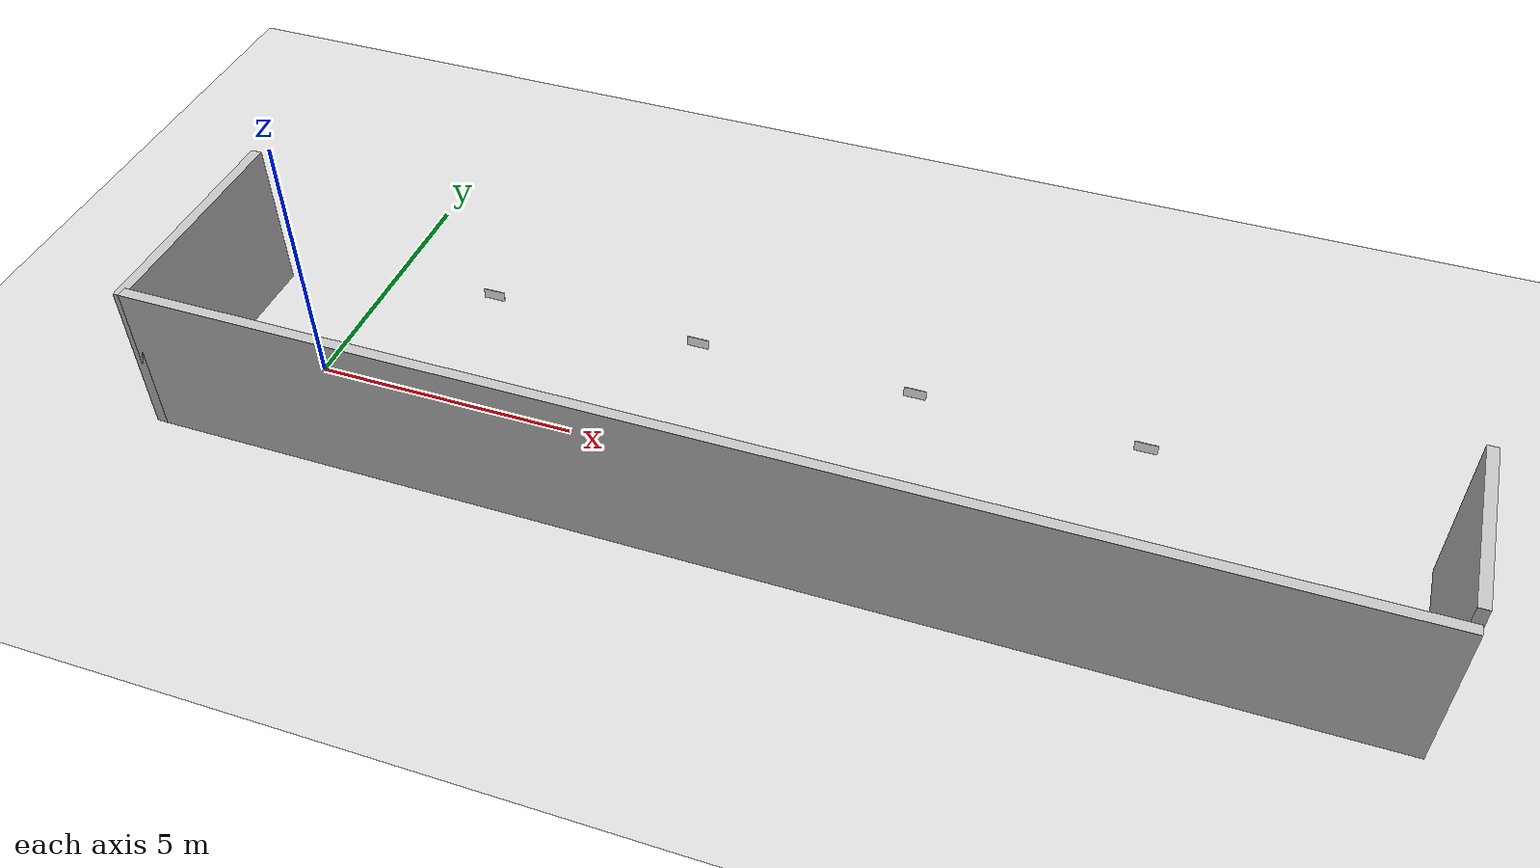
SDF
<?xml version="1.0"?>
<sdf version="1.9">
  <world name="floor">

    <gravity>0 0 -9.8</gravity>
    <atmosphere type="adiabatic"/>

    <scene>
      <ambient>0.4 0.4 0.4 1</ambient>
      <background>0.7 0.7 0.7 1</background>
    </scene>

    <physics name="1ms" type="ode">
      <max_step_size>0.001</max_step_size>
      <real_time_factor>1.0</real_time_factor>
    </physics>

    <plugin filename="gz-sim-physics-system"          name="gz::sim::systems::Physics"/>
    <plugin filename="gz-sim-sensors-system"           name="gz::sim::systems::Sensors">
      <render_engine>ogre2</render_engine>
    </plugin>
    <plugin filename="gz-sim-scene-broadcaster-system" name="gz::sim::systems::SceneBroadcaster"/>
    <plugin filename="gz-sim-user-commands-system"    name="gz::sim::systems::UserCommands"/>

    <light type="directional" name="sun">
      <cast_shadows>true</cast_shadows>
      <pose>0 0 12 0 0 0</pose>
      <diffuse>0.8 0.8 0.8 1</diffuse>
      <specular>0.2 0.2 0.2 1</specular>
      <direction>-0.5 0.1 -0.9</direction>
    </light>

    <!-- Distributed ceiling lights -->
    <light type="point" name="l0"><pose>3 0 2.8 0 0 0</pose>
      <diffuse>0.7 0.7 0.7 1</diffuse>
      <attenuation><range>10</range><constant>0.4</constant><linear>0.02</linear></attenuation></light>
    <light type="point" name="l1"><pose>10 0 2.8 0 0 0</pose>
      <diffuse>0.7 0.7 0.7 1</diffuse>
      <attenuation><range>10</range><constant>0.4</constant><linear>0.02</linear></attenuation></light>
    <light type="point" name="l2"><pose>10 8 2.8 0 0 0</pose>
      <diffuse>0.7 0.7 0.7 1</diffuse>
      <attenuation><range>10</range><constant>0.4</constant><linear>0.02</linear></attenuation></light>
    <light type="point" name="l3"><pose>17 0 2.8 0 0 0</pose>
      <diffuse>0.7 0.7 0.7 1</diffuse>
      <attenuation><range>10</range><constant>0.4</constant><linear>0.02</linear></attenuation></light>

    <!-- Ground -->
    <model name="ground_plane">
      <static>true</static>
      <link name="link">
        <collision name="c"><geometry><plane><normal>0 0 1</normal><size>50 50</size></plane></geometry></collision>
        <visual name="v"><geometry><plane><normal>0 0 1</normal><size>50 50</size></plane></geometry>
          <material><ambient>0.85 0.85 0.85 1</ambient><diffuse>0.85 0.85 0.85 1</diffuse></material></visual>
      </link>
    </model>

    <!-- Outer bounding walls (simplified — interior walls implicit) -->
    <model name="outer_south"><static>true</static><pose>9 -2.1 1.5 0 0 0</pose>
      <link name="l"><collision name="c"><geometry><box><size>22.2 0.2 3.0</size></box></geometry></collision>
        <visual name="v"><geometry><box><size>22.2 0.2 3.0</size></box></geometry>
          <material><ambient>0.75 0.75 0.75 1</ambient></material></visual></link></model>
    <model name="outer_west"><static>true</static><pose>-2.1 0 1.5 0 0 0</pose>
      <link name="l"><collision name="c"><geometry><box><size>0.2 4.4 3.0</size></box></geometry></collision>
        <visual name="v"><geometry><box><size>0.2 4.4 3.0</size></box></geometry>
          <material><ambient>0.75 0.75 0.75 1</ambient></material></visual></link></model>
    <model name="outer_east"><static>true</static><pose>20.1 0 1.5 0 0 0</pose>
      <link name="l"><collision name="c"><geometry><box><size>0.2 3.4 3.0</size></box></geometry></collision>
        <visual name="v"><geometry><box><size>0.2 3.4 3.0</size></box></geometry>
          <material><ambient>0.75 0.75 0.75 1</ambient></material></visual></link></model>
    <!-- north walls will be part of room back walls -->

    <!-- ── Room signs along Corridor A (north side) ────────────── -->
    <!-- Signs at x=3,7,11,15,19 on the north wall of the corridor -->
    <model name="sign_301_floor">
      <static>true</static><pose>3.0 1.45 1.5 0 0 3.14159</pose>
      <link name="s">
        <visual name="p"><geometry><box><size>0.4 0.01 0.2</size></box></geometry>
          <material><ambient>1 1 1 1</ambient></material></visual>
        <visual name="t"><pose>0 -0.006 0 0 0 0</pose>
          <geometry><box><size>0.28 0.01 0.12</size></box></geometry>
          <material><ambient>0.1 0.1 0.1 1</ambient></material></visual>
      </link>
    </model>
    <model name="sign_305_floor">
      <static>true</static><pose>7.0 1.45 1.5 0 0 3.14159</pose>
      <link name="s">
        <visual name="p"><geometry><box><size>0.4 0.01 0.2</size></box></geometry>
          <material><ambient>1 1 1 1</ambient></material></visual>
        <visual name="t"><pose>0 -0.006 0 0 0 0</pose>
          <geometry><box><size>0.28 0.01 0.12</size></box></geometry>
          <material><ambient>0.1 0.1 0.1 1</ambient></material></visual>
      </link>
    </model>
    <model name="sign_309_floor">
      <static>true</static><pose>11.0 1.45 1.5 0 0 3.14159</pose>
      <link name="s">
        <visual name="p"><geometry><box><size>0.4 0.01 0.2</size></box></geometry>
          <material><ambient>1 1 1 1</ambient></material></visual>
        <visual name="t"><pose>0 -0.006 0 0 0 0</pose>
          <geometry><box><size>0.28 0.01 0.12</size></box></geometry>
          <material><ambient>0.1 0.1 0.1 1</ambient></material></visual>
      </link>
    </model>
    <model name="sign_313_floor">
      <static>true</static><pose>15.0 1.45 1.5 0 0 3.14159</pose>
      <link name="s">
        <visual name="p"><geometry><box><size>0.4 0.01 0.2</size></box></geometry>
          <material><ambient>1 1 1 1</ambient></material></visual>
        <visual name="t"><pose>0 -0.006 0 0 0 0</pose>
          <geometry><box><size>0.28 0.01 0.12</size></box></geometry>
          <material><ambient>0.1 0.1 0.1 1</ambient></material></visual>
      </link>
    </model>

    <!-- Robot spawn: lobby center -->
    <!-- spawn_pose: 0 0 0.1   rpy: 0 0 0 -->

  </world>
</sdf>
